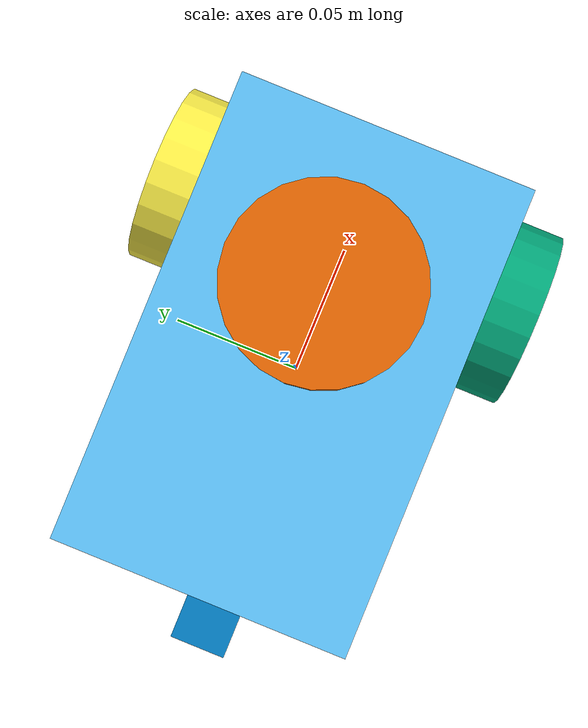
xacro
<?xml version="1.0"?>
 <!-- Este archivo contiene los parámetros para modelar el robot con las posiciones del LIDAR y la IMU incluida -->
  <!-- Las partes que se modelan son el chasis (como un bloque), las ruedas, la IMU y el LIDAR. -->
<robot name="differential_robot" xmlns:xacro="http://www.ros.org/wiki/xacro">

  <xacro:property name="wheel_diameter"  value="0.034"/>
  <xacro:property name="wheel_thickness" value="0.025"/>
  <xacro:property name="wheel_offset_z"  value="0.034"/>
  <xacro:property name="wheel_ori_x"     value="0.055"/>

  <xacro:property name="chassis_ori_z"  value="0.0605"/>
  <xacro:property name="chassis_size_x" value="0.175"/>
  <xacro:property name="chassis_size_y" value="0.11"/>
  <xacro:property name="chassis_size_z" value="0.027"/>

  <xacro:property name="laser_ori_x"  value="0.0275"/>

  <xacro:property name="imu_ori_x"  value="-0.095"/>

  <!-- Base link -->
  <link name="base_link"/>.

  <!-- Chassis -->
  <xacro:macro name="chassis">
  <link name="chassis">
    <visual>
      <origin xyz="0 0 ${chassis_ori_z} " rpy="0 0 0"/>
      <geometry>
        <box size="${chassis_size_x} ${chassis_size_y} ${chassis_size_z}"/>
      </geometry>
    </visual>
  </link>
  </xacro:macro>
  <xacro:chassis/>

  <!-- Left Wheel -->
  <xacro:macro name="left_wheel">
    <link name="left_wheel">
    <visual>
      <origin xyz="0 0 0" rpy="0 0 0"/>
      <geometry>
        <cylinder radius="${wheel_diameter}" length="${wheel_thickness}"/>
      </geometry>
    </visual>
    </link>
  </xacro:macro>
  <xacro:left_wheel/>

  <!-- Right Wheel -->
  <xacro:macro name="right_wheel">
  <link name="right_wheel">
    <visual>
      <origin xyz="0.0 0 0.0" rpy="0 0 0"/>
      <geometry>
        <cylinder radius="${wheel_diameter}" length="${wheel_thickness}"/>
      </geometry>
    </visual>
  </link>
  </xacro:macro>
  <xacro:right_wheel/>

  <!-- IMU -->
  <xacro:macro name="imu">
    <link name="imu">
      <visual>
        <origin xyz="0 0 0" rpy="0 0 0"/>
        <geometry>
          <box size="0.02 0.02 0.005"/>
        </geometry>
      </visual>
    </link>

  <joint name="imu_joint" type="fixed">
    <parent link="chassis"/>
    <child link="imu"/>
    <origin xyz="${imu_ori_x} -0.006 0.059" rpy="0 0 0"/>
  </joint>
  </xacro:macro>
  <xacro:imu/>

  <!-- LiDAR -->
  <xacro:macro name="laser">
    <link name="laser">
      <visual>
        <origin xyz="0 0 0" rpy="0 0 0"/>
        <geometry>
          <cylinder radius="0.035" length="0.04"/>
        </geometry>
      </visual>
    </link>

  <joint name="lidar_joint" type="fixed">
    <parent link="chassis"/>
    <child link="laser"/>
    <origin xyz="${laser_ori_x} 0 ${chassis_size_z + chassis_ori_z}" rpy="0 0 0"/>
  </joint>
  </xacro:macro>
  <xacro:laser/>

  <!-- Joints -->
  <joint name="chassis_to_base" type="fixed">
    <parent link="base_link"/>
    <child link="chassis"/>
  </joint>

  <joint name="left_wheel_joint" type="continuous">
    <parent link="chassis"/>
    <child link="left_wheel"/>
    <origin xyz="0.05 -0.0625 0.017" rpy="${-pi/2} 0 0"/>
    <axis xyz="0 0 1"/>
  </joint>

  <joint name="right_wheel_joint" type="continuous">
    <parent link="chassis"/>
    <child link="right_wheel"/>
    <origin xyz="0.05 0.0625 0.017" rpy="${pi/2} 0 0"/>
    <axis xyz="0 0 1"/>
  </joint>

</robot>
